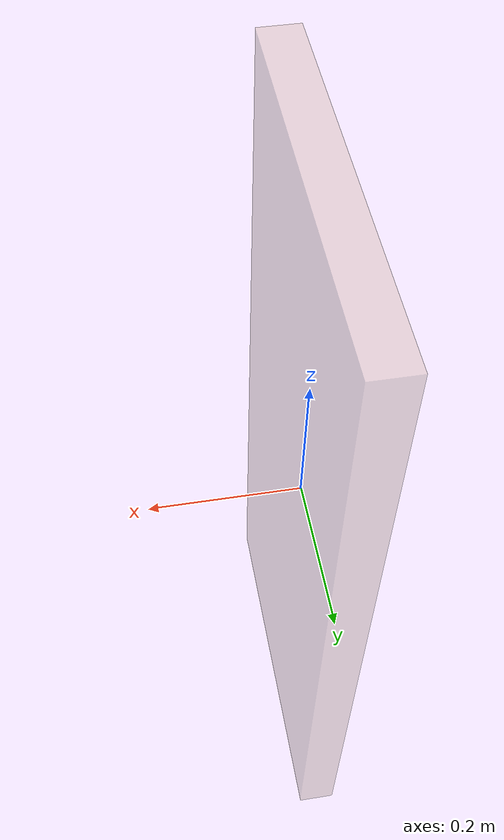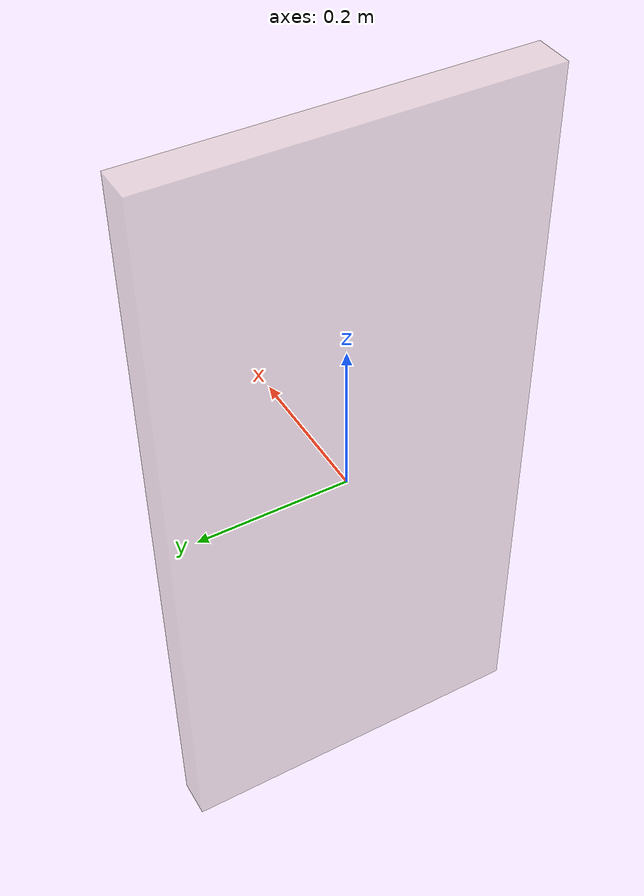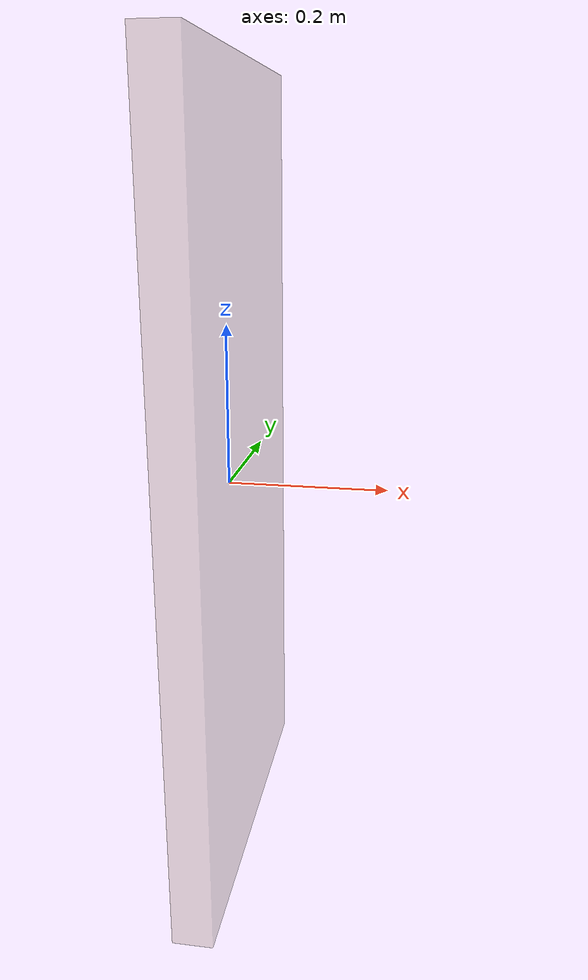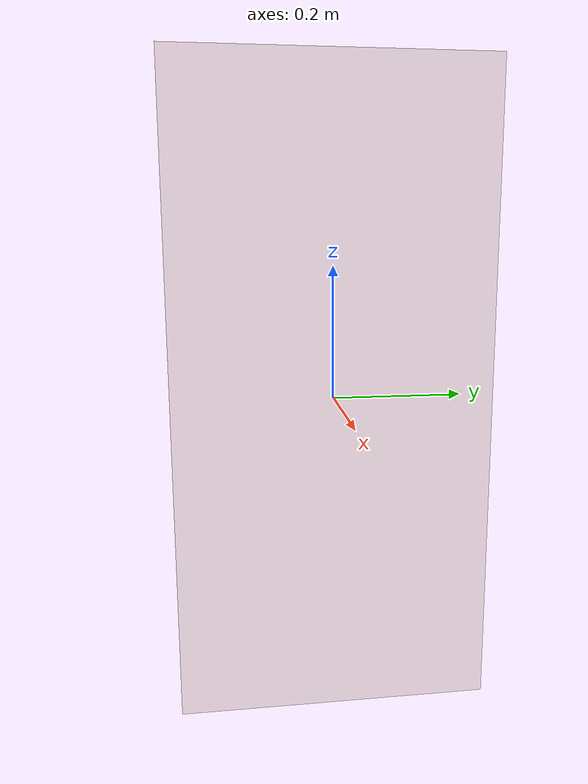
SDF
<?xml version="1.0"?>
<sdf version="1.7">

  <!-- world->ghost_body_y->ghost_body_z_sphere-->
  <model name="door_fixed">
    <!-- The model for a solid box of uniform density. -->

    <link name="door">
      <pose>0 0 0 0 0 0</pose>
      <inertial>
        <mass>1.0</mass>
        <inertia>
          <ixx>0.166666666666667</ixx>
          <ixy>0</ixy>
          <ixz>0</ixz>
          <iyy>0.166666666666667</iyy>
          <iyz>0</iyz>
          <izz>0.166666666666667</izz>
        </inertia>
      </inertial>

      <visual name="box_visual">
        <pose>0 0 0 0 0 0 </pose>
        <geometry>
          <box>
            <size>0.05 0.49 1.0</size>
          </box>
        </geometry>
        <material>
          <diffuse>0.75 0.6 0.5 0.3</diffuse>
        </material>
      </visual>

      <collision name="collision">
        <pose>0 0 0 0 0 0 </pose>
        <geometry>
          <box>
            <size>0.05 0.49 1.0</size>
          </box>
        </geometry>
        <surface>
          <friction>
            <ode>
              <mu>0.5</mu>
              <mu2>0.5</mu2>
            </ode>
          </friction>
        </surface>
      </collision>
    </link>

  </model>
</sdf>
